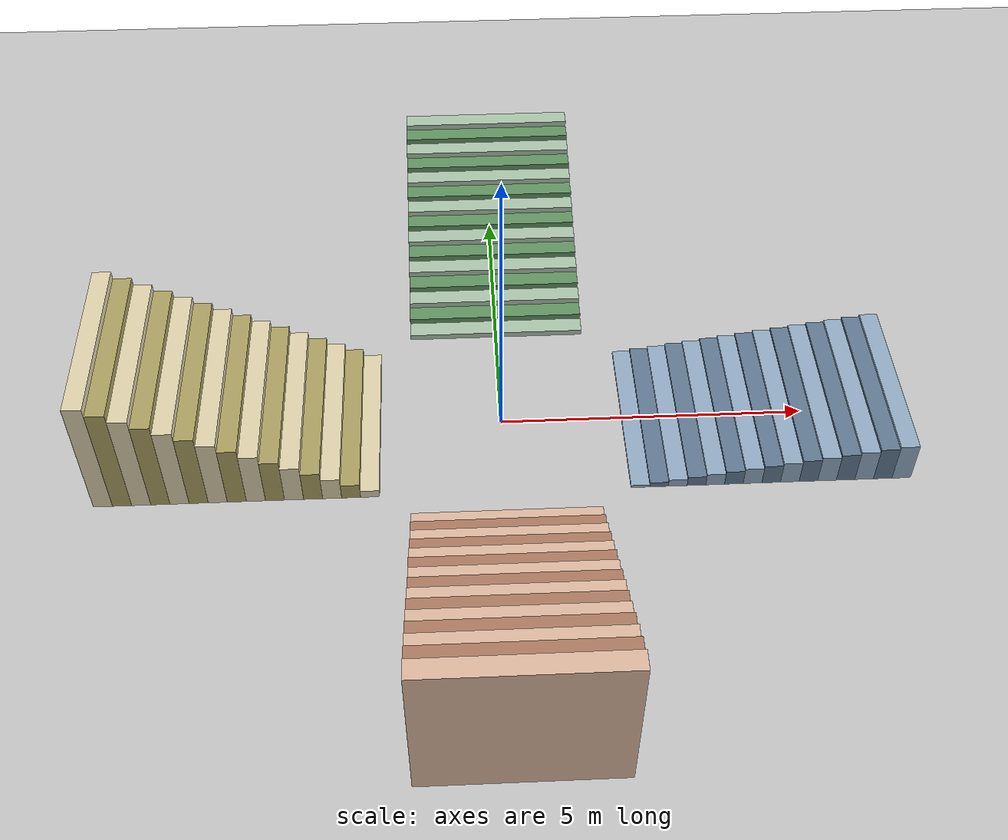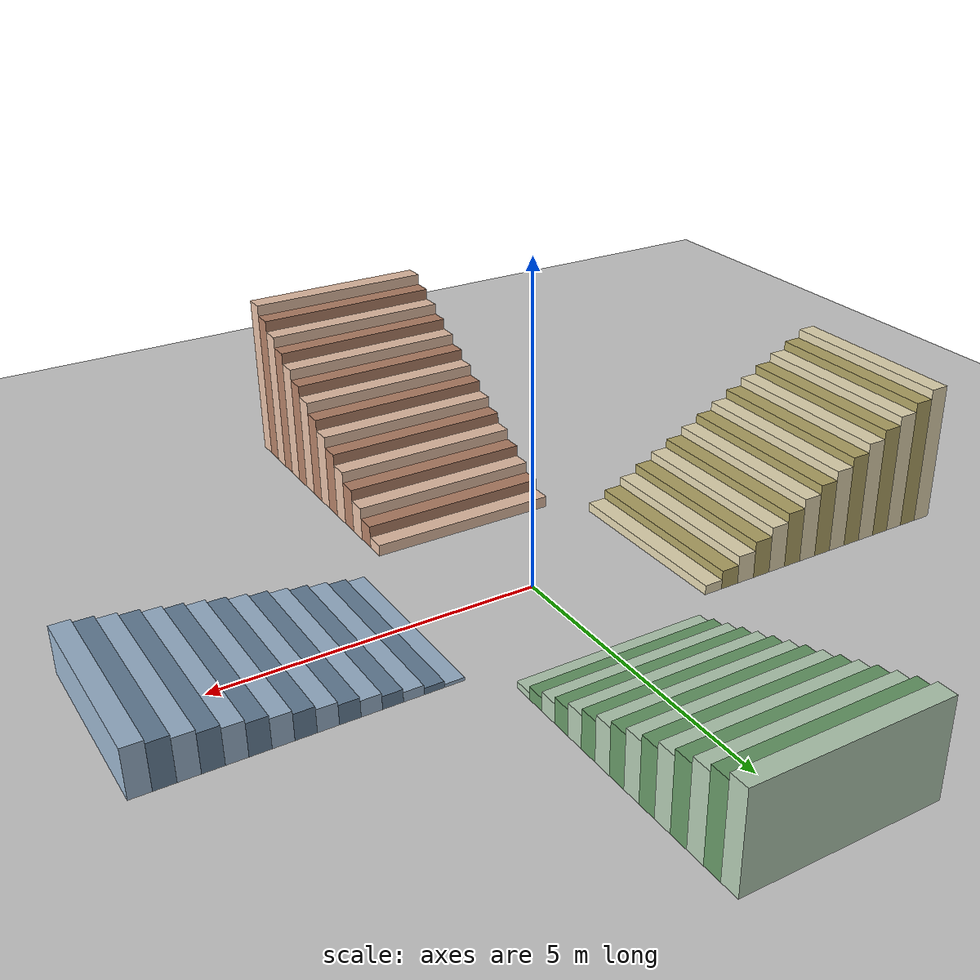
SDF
<?xml version="1.0" ?>
<sdf version="1.5">
  <world name="quadruped_stair_pro_v3_friction">

    <physics type="ode">
        <max_step_size>0.0005</max_step_size>
        <real_time_factor>1</real_time_factor>
        <real_time_update_rate>2000</real_time_update_rate>
        <gravity>0 0 -9.81</gravity>
        <ode>
            <solver>
                <type>quick</type>
                <iters>100</iters>
                <sor>1.0</sor>
            </solver>
            <constraints>
                <cfm>0.0</cfm>
                <erp>0.2</erp>
                <contact_max_correcting_vel>10.0</contact_max_correcting_vel>
                <contact_surface_layer>0.001</contact_surface_layer>
            </constraints>
        </ode>
    </physics>

    <include><uri>model://sun</uri></include>

    <model name="ground_plane_friction">
      <static>true</static>
      <link name="link">
        <collision name="collision">
          <geometry><plane><normal>0 0 1</normal><size>100 100</size></plane></geometry>
          <surface>
            <friction>
              <ode><mu>1.0</mu><mu2>1.0</mu2></ode>
            </friction>
          </surface>
        </collision>
        <visual name="visual">
          <geometry><plane><normal>0 0 1</normal><size>100 100</size></plane></geometry>
          <material><ambient>0.8 0.8 0.8 1</ambient><diffuse>0.8 0.8 0.8 1</diffuse></material>
        </visual>
      </link>
    </model>

    <model name="stair_challenge_env">
      <static>true</static>

      <link name="step_5cm_1"><pose>2.15 0 0.025 0 0 0</pose><visual name="v"><geometry><box><size>0.3 3.0 0.05</size></box></geometry><material><ambient>0.6 0.7 0.8 1</ambient><diffuse>0.6 0.7 0.8 1</diffuse></material></visual><collision name="c"><geometry><box><size>0.3 3.0 0.05</size></box></geometry><surface><friction><ode><mu>1.0</mu><mu2>1.0</mu2></ode></friction></surface></collision></link>
      <link name="step_5cm_2"><pose>2.45 0 0.050 0 0 0</pose><visual name="v"><geometry><box><size>0.3 3.0 0.10</size></box></geometry><material><ambient>0.4 0.5 0.6 1</ambient><diffuse>0.4 0.5 0.6 1</diffuse></material></visual><collision name="c"><geometry><box><size>0.3 3.0 0.10</size></box></geometry><surface><friction><ode><mu>1.0</mu><mu2>1.0</mu2></ode></friction></surface></collision></link>
      <link name="step_5cm_3"><pose>2.75 0 0.075 0 0 0</pose><visual name="v"><geometry><box><size>0.3 3.0 0.15</size></box></geometry><material><ambient>0.6 0.7 0.8 1</ambient><diffuse>0.6 0.7 0.8 1</diffuse></material></visual><collision name="c"><geometry><box><size>0.3 3.0 0.15</size></box></geometry><surface><friction><ode><mu>1.0</mu><mu2>1.0</mu2></ode></friction></surface></collision></link>
      <link name="step_5cm_4"><pose>3.05 0 0.100 0 0 0</pose><visual name="v"><geometry><box><size>0.3 3.0 0.20</size></box></geometry><material><ambient>0.4 0.5 0.6 1</ambient><diffuse>0.4 0.5 0.6 1</diffuse></material></visual><collision name="c"><geometry><box><size>0.3 3.0 0.20</size></box></geometry><surface><friction><ode><mu>1.0</mu><mu2>1.0</mu2></ode></friction></surface></collision></link>
      <link name="step_5cm_5"><pose>3.35 0 0.125 0 0 0</pose><visual name="v"><geometry><box><size>0.3 3.0 0.25</size></box></geometry><material><ambient>0.6 0.7 0.8 1</ambient><diffuse>0.6 0.7 0.8 1</diffuse></material></visual><collision name="c"><geometry><box><size>0.3 3.0 0.25</size></box></geometry><surface><friction><ode><mu>1.0</mu><mu2>1.0</mu2></ode></friction></surface></collision></link>
      <link name="step_5cm_6"><pose>3.65 0 0.150 0 0 0</pose><visual name="v"><geometry><box><size>0.3 3.0 0.30</size></box></geometry><material><ambient>0.4 0.5 0.6 1</ambient><diffuse>0.4 0.5 0.6 1</diffuse></material></visual><collision name="c"><geometry><box><size>0.3 3.0 0.30</size></box></geometry><surface><friction><ode><mu>1.0</mu><mu2>1.0</mu2></ode></friction></surface></collision></link>
      <link name="step_5cm_7"><pose>3.95 0 0.175 0 0 0</pose><visual name="v"><geometry><box><size>0.3 3.0 0.35</size></box></geometry><material><ambient>0.6 0.7 0.8 1</ambient><diffuse>0.6 0.7 0.8 1</diffuse></material></visual><collision name="c"><geometry><box><size>0.3 3.0 0.35</size></box></geometry><surface><friction><ode><mu>1.0</mu><mu2>1.0</mu2></ode></friction></surface></collision></link>
      <link name="step_5cm_8"><pose>4.25 0 0.200 0 0 0</pose><visual name="v"><geometry><box><size>0.3 3.0 0.40</size></box></geometry><material><ambient>0.4 0.5 0.6 1</ambient><diffuse>0.4 0.5 0.6 1</diffuse></material></visual><collision name="c"><geometry><box><size>0.3 3.0 0.40</size></box></geometry><surface><friction><ode><mu>1.0</mu><mu2>1.0</mu2></ode></friction></surface></collision></link>
      <link name="step_5cm_9"><pose>4.55 0 0.225 0 0 0</pose><visual name="v"><geometry><box><size>0.3 3.0 0.45</size></box></geometry><material><ambient>0.6 0.7 0.8 1</ambient><diffuse>0.6 0.7 0.8 1</diffuse></material></visual><collision name="c"><geometry><box><size>0.3 3.0 0.45</size></box></geometry><surface><friction><ode><mu>1.0</mu><mu2>1.0</mu2></ode></friction></surface></collision></link>
      <link name="step_5cm_10"><pose>4.85 0 0.250 0 0 0</pose><visual name="v"><geometry><box><size>0.3 3.0 0.50</size></box></geometry><material><ambient>0.4 0.5 0.6 1</ambient><diffuse>0.4 0.5 0.6 1</diffuse></material></visual><collision name="c"><geometry><box><size>0.3 3.0 0.50</size></box></geometry><surface><friction><ode><mu>1.0</mu><mu2>1.0</mu2></ode></friction></surface></collision></link>
      <link name="step_5cm_11"><pose>5.15 0 0.275 0 0 0</pose><visual name="v"><geometry><box><size>0.3 3.0 0.55</size></box></geometry><material><ambient>0.6 0.7 0.8 1</ambient><diffuse>0.6 0.7 0.8 1</diffuse></material></visual><collision name="c"><geometry><box><size>0.3 3.0 0.55</size></box></geometry><surface><friction><ode><mu>1.0</mu><mu2>1.0</mu2></ode></friction></surface></collision></link>
      <link name="step_5cm_12"><pose>5.45 0 0.300 0 0 0</pose><visual name="v"><geometry><box><size>0.3 3.0 0.60</size></box></geometry><material><ambient>0.4 0.5 0.6 1</ambient><diffuse>0.4 0.5 0.6 1</diffuse></material></visual><collision name="c"><geometry><box><size>0.3 3.0 0.60</size></box></geometry><surface><friction><ode><mu>1.0</mu><mu2>1.0</mu2></ode></friction></surface></collision></link>
      <link name="step_5cm_13"><pose>5.75 0 0.325 0 0 0</pose><visual name="v"><geometry><box><size>0.3 3.0 0.65</size></box></geometry><material><ambient>0.6 0.7 0.8 1</ambient><diffuse>0.6 0.7 0.8 1</diffuse></material></visual><collision name="c"><geometry><box><size>0.3 3.0 0.65</size></box></geometry><surface><friction><ode><mu>1.0</mu><mu2>1.0</mu2></ode></friction></surface></collision></link>
      <link name="step_5cm_14"><pose>6.05 0 0.350 0 0 0</pose><visual name="v"><geometry><box><size>0.3 3.0 0.70</size></box></geometry><material><ambient>0.4 0.5 0.6 1</ambient><diffuse>0.4 0.5 0.6 1</diffuse></material></visual><collision name="c"><geometry><box><size>0.3 3.0 0.70</size></box></geometry><surface><friction><ode><mu>1.0</mu><mu2>1.0</mu2></ode></friction></surface></collision></link>
      <link name="step_5cm_15"><pose>6.35 0 0.375 0 0 0</pose><visual name="v"><geometry><box><size>0.3 3.0 0.75</size></box></geometry><material><ambient>0.6 0.7 0.8 1</ambient><diffuse>0.6 0.7 0.8 1</diffuse></material></visual><collision name="c"><geometry><box><size>0.3 3.0 0.75</size></box></geometry><surface><friction><ode><mu>1.0</mu><mu2>1.0</mu2></ode></friction></surface></collision></link>

      <link name="step_10cm_1"><pose>0 2.15 0.05 0 0 0</pose><visual name="v"><geometry><box><size>3.0 0.3 0.10</size></box></geometry><material><ambient>0.7 0.8 0.7 1</ambient><diffuse>0.7 0.8 0.7 1</diffuse></material></visual><collision name="c"><geometry><box><size>3.0 0.3 0.10</size></box></geometry><surface><friction><ode><mu>1.0</mu><mu2>1.0</mu2></ode></friction></surface></collision></link>
      <link name="step_10cm_2"><pose>0 2.45 0.10 0 0 0</pose><visual name="v"><geometry><box><size>3.0 0.3 0.20</size></box></geometry><material><ambient>0.4 0.6 0.4 1</ambient><diffuse>0.4 0.6 0.4 1</diffuse></material></visual><collision name="c"><geometry><box><size>3.0 0.3 0.20</size></box></geometry><surface><friction><ode><mu>1.0</mu><mu2>1.0</mu2></ode></friction></surface></collision></link>
      <link name="step_10cm_3"><pose>0 2.75 0.15 0 0 0</pose><visual name="v"><geometry><box><size>3.0 0.3 0.30</size></box></geometry><material><ambient>0.7 0.8 0.7 1</ambient><diffuse>0.7 0.8 0.7 1</diffuse></material></visual><collision name="c"><geometry><box><size>3.0 0.3 0.30</size></box></geometry><surface><friction><ode><mu>1.0</mu><mu2>1.0</mu2></ode></friction></surface></collision></link>
      <link name="step_10cm_4"><pose>0 3.05 0.20 0 0 0</pose><visual name="v"><geometry><box><size>3.0 0.3 0.40</size></box></geometry><material><ambient>0.4 0.6 0.4 1</ambient><diffuse>0.4 0.6 0.4 1</diffuse></material></visual><collision name="c"><geometry><box><size>3.0 0.3 0.40</size></box></geometry><surface><friction><ode><mu>1.0</mu><mu2>1.0</mu2></ode></friction></surface></collision></link>
      <link name="step_10cm_5"><pose>0 3.35 0.25 0 0 0</pose><visual name="v"><geometry><box><size>3.0 0.3 0.50</size></box></geometry><material><ambient>0.7 0.8 0.7 1</ambient><diffuse>0.7 0.8 0.7 1</diffuse></material></visual><collision name="c"><geometry><box><size>3.0 0.3 0.50</size></box></geometry><surface><friction><ode><mu>1.0</mu><mu2>1.0</mu2></ode></friction></surface></collision></link>
      <link name="step_10cm_6"><pose>0 3.65 0.30 0 0 0</pose><visual name="v"><geometry><box><size>3.0 0.3 0.60</size></box></geometry><material><ambient>0.4 0.6 0.4 1</ambient><diffuse>0.4 0.6 0.4 1</diffuse></material></visual><collision name="c"><geometry><box><size>3.0 0.3 0.60</size></box></geometry><surface><friction><ode><mu>1.0</mu><mu2>1.0</mu2></ode></friction></surface></collision></link>
      <link name="step_10cm_7"><pose>0 3.95 0.35 0 0 0</pose><visual name="v"><geometry><box><size>3.0 0.3 0.70</size></box></geometry><material><ambient>0.7 0.8 0.7 1</ambient><diffuse>0.7 0.8 0.7 1</diffuse></material></visual><collision name="c"><geometry><box><size>3.0 0.3 0.70</size></box></geometry><surface><friction><ode><mu>1.0</mu><mu2>1.0</mu2></ode></friction></surface></collision></link>
      <link name="step_10cm_8"><pose>0 4.25 0.40 0 0 0</pose><visual name="v"><geometry><box><size>3.0 0.3 0.80</size></box></geometry><material><ambient>0.4 0.6 0.4 1</ambient><diffuse>0.4 0.6 0.4 1</diffuse></material></visual><collision name="c"><geometry><box><size>3.0 0.3 0.80</size></box></geometry><surface><friction><ode><mu>1.0</mu><mu2>1.0</mu2></ode></friction></surface></collision></link>
      <link name="step_10cm_9"><pose>0 4.55 0.45 0 0 0</pose><visual name="v"><geometry><box><size>3.0 0.3 0.90</size></box></geometry><material><ambient>0.7 0.8 0.7 1</ambient><diffuse>0.7 0.8 0.7 1</diffuse></material></visual><collision name="c"><geometry><box><size>3.0 0.3 0.90</size></box></geometry><surface><friction><ode><mu>1.0</mu><mu2>1.0</mu2></ode></friction></surface></collision></link>
      <link name="step_10cm_10"><pose>0 4.85 0.50 0 0 0</pose><visual name="v"><geometry><box><size>3.0 0.3 1.00</size></box></geometry><material><ambient>0.4 0.6 0.4 1</ambient><diffuse>0.4 0.6 0.4 1</diffuse></material></visual><collision name="c"><geometry><box><size>3.0 0.3 1.00</size></box></geometry><surface><friction><ode><mu>1.0</mu><mu2>1.0</mu2></ode></friction></surface></collision></link>
      <link name="step_10cm_11"><pose>0 5.15 0.55 0 0 0</pose><visual name="v"><geometry><box><size>3.0 0.3 1.10</size></box></geometry><material><ambient>0.7 0.8 0.7 1</ambient><diffuse>0.7 0.8 0.7 1</diffuse></material></visual><collision name="c"><geometry><box><size>3.0 0.3 1.10</size></box></geometry><surface><friction><ode><mu>1.0</mu><mu2>1.0</mu2></ode></friction></surface></collision></link>
      <link name="step_10cm_12"><pose>0 5.45 0.60 0 0 0</pose><visual name="v"><geometry><box><size>3.0 0.3 1.20</size></box></geometry><material><ambient>0.4 0.6 0.4 1</ambient><diffuse>0.4 0.6 0.4 1</diffuse></material></visual><collision name="c"><geometry><box><size>3.0 0.3 1.20</size></box></geometry><surface><friction><ode><mu>1.0</mu><mu2>1.0</mu2></ode></friction></surface></collision></link>
      <link name="step_10cm_13"><pose>0 5.75 0.65 0 0 0</pose><visual name="v"><geometry><box><size>3.0 0.3 1.30</size></box></geometry><material><ambient>0.7 0.8 0.7 1</ambient><diffuse>0.7 0.8 0.7 1</diffuse></material></visual><collision name="c"><geometry><box><size>3.0 0.3 1.30</size></box></geometry><surface><friction><ode><mu>1.0</mu><mu2>1.0</mu2></ode></friction></surface></collision></link>
      <link name="step_10cm_14"><pose>0 6.05 0.70 0 0 0</pose><visual name="v"><geometry><box><size>3.0 0.3 1.40</size></box></geometry><material><ambient>0.4 0.6 0.4 1</ambient><diffuse>0.4 0.6 0.4 1</diffuse></material></visual><collision name="c"><geometry><box><size>3.0 0.3 1.40</size></box></geometry><surface><friction><ode><mu>1.0</mu><mu2>1.0</mu2></ode></friction></surface></collision></link>
      <link name="step_10cm_15"><pose>0 6.35 0.75 0 0 0</pose><visual name="v"><geometry><box><size>3.0 0.3 1.50</size></box></geometry><material><ambient>0.7 0.8 0.7 1</ambient><diffuse>0.7 0.8 0.7 1</diffuse></material></visual><collision name="c"><geometry><box><size>3.0 0.3 1.50</size></box></geometry><surface><friction><ode><mu>1.0</mu><mu2>1.0</mu2></ode></friction></surface></collision></link>

      <link name="step_15cm_1"><pose>-2.15 0 0.075 0 0 0</pose><visual name="v"><geometry><box><size>0.3 3.0 0.15</size></box></geometry><material><ambient>0.9 0.85 0.7 1</ambient><diffuse>0.9 0.85 0.7 1</diffuse></material></visual><collision name="c"><geometry><box><size>0.3 3.0 0.15</size></box></geometry><surface><friction><ode><mu>1.0</mu><mu2>1.0</mu2></ode></friction></surface></collision></link>
      <link name="step_15cm_2"><pose>-2.45 0 0.150 0 0 0</pose><visual name="v"><geometry><box><size>0.3 3.0 0.30</size></box></geometry><material><ambient>0.7 0.65 0.4 1</ambient><diffuse>0.7 0.65 0.4 1</diffuse></material></visual><collision name="c"><geometry><box><size>0.3 3.0 0.30</size></box></geometry><surface><friction><ode><mu>1.0</mu><mu2>1.0</mu2></ode></friction></surface></collision></link>
      <link name="step_15cm_3"><pose>-2.75 0 0.225 0 0 0</pose><visual name="v"><geometry><box><size>0.3 3.0 0.45</size></box></geometry><material><ambient>0.9 0.85 0.7 1</ambient><diffuse>0.9 0.85 0.7 1</diffuse></material></visual><collision name="c"><geometry><box><size>0.3 3.0 0.45</size></box></geometry><surface><friction><ode><mu>1.0</mu><mu2>1.0</mu2></ode></friction></surface></collision></link>
      <link name="step_15cm_4"><pose>-3.05 0 0.300 0 0 0</pose><visual name="v"><geometry><box><size>0.3 3.0 0.60</size></box></geometry><material><ambient>0.7 0.65 0.4 1</ambient><diffuse>0.7 0.65 0.4 1</diffuse></material></visual><collision name="c"><geometry><box><size>0.3 3.0 0.60</size></box></geometry><surface><friction><ode><mu>1.0</mu><mu2>1.0</mu2></ode></friction></surface></collision></link>
      <link name="step_15cm_5"><pose>-3.35 0 0.375 0 0 0</pose><visual name="v"><geometry><box><size>0.3 3.0 0.75</size></box></geometry><material><ambient>0.9 0.85 0.7 1</ambient><diffuse>0.9 0.85 0.7 1</diffuse></material></visual><collision name="c"><geometry><box><size>0.3 3.0 0.75</size></box></geometry><surface><friction><ode><mu>1.0</mu><mu2>1.0</mu2></ode></friction></surface></collision></link>
      <link name="step_15cm_6"><pose>-3.65 0 0.450 0 0 0</pose><visual name="v"><geometry><box><size>0.3 3.0 0.90</size></box></geometry><material><ambient>0.7 0.65 0.4 1</ambient><diffuse>0.7 0.65 0.4 1</diffuse></material></visual><collision name="c"><geometry><box><size>0.3 3.0 0.90</size></box></geometry><surface><friction><ode><mu>1.0</mu><mu2>1.0</mu2></ode></friction></surface></collision></link>
      <link name="step_15cm_7"><pose>-3.95 0 0.525 0 0 0</pose><visual name="v"><geometry><box><size>0.3 3.0 1.05</size></box></geometry><material><ambient>0.9 0.85 0.7 1</ambient><diffuse>0.9 0.85 0.7 1</diffuse></material></visual><collision name="c"><geometry><box><size>0.3 3.0 1.05</size></box></geometry><surface><friction><ode><mu>1.0</mu><mu2>1.0</mu2></ode></friction></surface></collision></link>
      <link name="step_15cm_8"><pose>-4.25 0 0.600 0 0 0</pose><visual name="v"><geometry><box><size>0.3 3.0 1.20</size></box></geometry><material><ambient>0.7 0.65 0.4 1</ambient><diffuse>0.7 0.65 0.4 1</diffuse></material></visual><collision name="c"><geometry><box><size>0.3 3.0 1.20</size></box></geometry><surface><friction><ode><mu>1.0</mu><mu2>1.0</mu2></ode></friction></surface></collision></link>
      <link name="step_15cm_9"><pose>-4.55 0 0.675 0 0 0</pose><visual name="v"><geometry><box><size>0.3 3.0 1.35</size></box></geometry><material><ambient>0.9 0.85 0.7 1</ambient><diffuse>0.9 0.85 0.7 1</diffuse></material></visual><collision name="c"><geometry><box><size>0.3 3.0 1.35</size></box></geometry><surface><friction><ode><mu>1.0</mu><mu2>1.0</mu2></ode></friction></surface></collision></link>
      <link name="step_15cm_10"><pose>-4.85 0 0.750 0 0 0</pose><visual name="v"><geometry><box><size>0.3 3.0 1.50</size></box></geometry><material><ambient>0.7 0.65 0.4 1</ambient><diffuse>0.7 0.65 0.4 1</diffuse></material></visual><collision name="c"><geometry><box><size>0.3 3.0 1.50</size></box></geometry><surface><friction><ode><mu>1.0</mu><mu2>1.0</mu2></ode></friction></surface></collision></link>
      <link name="step_15cm_11"><pose>-5.15 0 0.825 0 0 0</pose><visual name="v"><geometry><box><size>0.3 3.0 1.65</size></box></geometry><material><ambient>0.9 0.85 0.7 1</ambient><diffuse>0.9 0.85 0.7 1</diffuse></material></visual><collision name="c"><geometry><box><size>0.3 3.0 1.65</size></box></geometry><surface><friction><ode><mu>1.0</mu><mu2>1.0</mu2></ode></friction></surface></collision></link>
      <link name="step_15cm_12"><pose>-5.45 0 0.900 0 0 0</pose><visual name="v"><geometry><box><size>0.3 3.0 1.80</size></box></geometry><material><ambient>0.7 0.65 0.4 1</ambient><diffuse>0.7 0.65 0.4 1</diffuse></material></visual><collision name="c"><geometry><box><size>0.3 3.0 1.80</size></box></geometry><surface><friction><ode><mu>1.0</mu><mu2>1.0</mu2></ode></friction></surface></collision></link>
      <link name="step_15cm_13"><pose>-5.75 0 0.975 0 0 0</pose><visual name="v"><geometry><box><size>0.3 3.0 1.95</size></box></geometry><material><ambient>0.9 0.85 0.7 1</ambient><diffuse>0.9 0.85 0.7 1</diffuse></material></visual><collision name="c"><geometry><box><size>0.3 3.0 1.95</size></box></geometry><surface><friction><ode><mu>1.0</mu><mu2>1.0</mu2></ode></friction></surface></collision></link>
      <link name="step_15cm_14"><pose>-6.05 0 1.050 0 0 0</pose><visual name="v"><geometry><box><size>0.3 3.0 2.10</size></box></geometry><material><ambient>0.7 0.65 0.4 1</ambient><diffuse>0.7 0.65 0.4 1</diffuse></material></visual><collision name="c"><geometry><box><size>0.3 3.0 2.10</size></box></geometry><surface><friction><ode><mu>1.0</mu><mu2>1.0</mu2></ode></friction></surface></collision></link>
      <link name="step_15cm_15"><pose>-6.35 0 1.125 0 0 0</pose><visual name="v"><geometry><box><size>0.3 3.0 2.25</size></box></geometry><material><ambient>0.9 0.85 0.7 1</ambient><diffuse>0.9 0.85 0.7 1</diffuse></material></visual><collision name="c"><geometry><box><size>0.3 3.0 2.25</size></box></geometry><surface><friction><ode><mu>1.0</mu><mu2>1.0</mu2></ode></friction></surface></collision></link>

      <link name="step_18cm_1"><pose>0 -2.15 0.090 0 0 0</pose><visual name="v"><geometry><box><size>3.0 0.3 0.18</size></box></geometry><material><ambient>0.9 0.75 0.65 1</ambient><diffuse>0.9 0.75 0.65 1</diffuse></material></visual><collision name="c"><geometry><box><size>3.0 0.3 0.18</size></box></geometry><surface><friction><ode><mu>1.0</mu><mu2>1.0</mu2></ode></friction></surface></collision></link>
      <link name="step_18cm_2"><pose>0 -2.45 0.180 0 0 0</pose><visual name="v"><geometry><box><size>3.0 0.3 0.36</size></box></geometry><material><ambient>0.7 0.5 0.4 1</ambient><diffuse>0.7 0.5 0.4 1</diffuse></material></visual><collision name="c"><geometry><box><size>3.0 0.3 0.36</size></box></geometry><surface><friction><ode><mu>1.0</mu><mu2>1.0</mu2></ode></friction></surface></collision></link>
      <link name="step_18cm_3"><pose>0 -2.75 0.270 0 0 0</pose><visual name="v"><geometry><box><size>3.0 0.3 0.54</size></box></geometry><material><ambient>0.9 0.75 0.65 1</ambient><diffuse>0.9 0.75 0.65 1</diffuse></material></visual><collision name="c"><geometry><box><size>3.0 0.3 0.54</size></box></geometry><surface><friction><ode><mu>1.0</mu><mu2>1.0</mu2></ode></friction></surface></collision></link>
      <link name="step_18cm_4"><pose>0 -3.05 0.360 0 0 0</pose><visual name="v"><geometry><box><size>3.0 0.3 0.72</size></box></geometry><material><ambient>0.7 0.5 0.4 1</ambient><diffuse>0.7 0.5 0.4 1</diffuse></material></visual><collision name="c"><geometry><box><size>3.0 0.3 0.72</size></box></geometry><surface><friction><ode><mu>1.0</mu><mu2>1.0</mu2></ode></friction></surface></collision></link>
      <link name="step_18cm_5"><pose>0 -3.35 0.450 0 0 0</pose><visual name="v"><geometry><box><size>3.0 0.3 0.90</size></box></geometry><material><ambient>0.9 0.75 0.65 1</ambient><diffuse>0.9 0.75 0.65 1</diffuse></material></visual><collision name="c"><geometry><box><size>3.0 0.3 0.90</size></box></geometry><surface><friction><ode><mu>1.0</mu><mu2>1.0</mu2></ode></friction></surface></collision></link>
      <link name="step_18cm_6"><pose>0 -3.65 0.540 0 0 0</pose><visual name="v"><geometry><box><size>3.0 0.3 1.08</size></box></geometry><material><ambient>0.7 0.5 0.4 1</ambient><diffuse>0.7 0.5 0.4 1</diffuse></material></visual><collision name="c"><geometry><box><size>3.0 0.3 1.08</size></box></geometry><surface><friction><ode><mu>1.0</mu><mu2>1.0</mu2></ode></friction></surface></collision></link>
      <link name="step_18cm_7"><pose>0 -3.95 0.630 0 0 0</pose><visual name="v"><geometry><box><size>3.0 0.3 1.26</size></box></geometry><material><ambient>0.9 0.75 0.65 1</ambient><diffuse>0.9 0.75 0.65 1</diffuse></material></visual><collision name="c"><geometry><box><size>3.0 0.3 1.26</size></box></geometry><surface><friction><ode><mu>1.0</mu><mu2>1.0</mu2></ode></friction></surface></collision></link>
      <link name="step_18cm_8"><pose>0 -4.25 0.720 0 0 0</pose><visual name="v"><geometry><box><size>3.0 0.3 1.44</size></box></geometry><material><ambient>0.7 0.5 0.4 1</ambient><diffuse>0.7 0.5 0.4 1</diffuse></material></visual><collision name="c"><geometry><box><size>3.0 0.3 1.44</size></box></geometry><surface><friction><ode><mu>1.0</mu><mu2>1.0</mu2></ode></friction></surface></collision></link>
      <link name="step_18cm_9"><pose>0 -4.55 0.810 0 0 0</pose><visual name="v"><geometry><box><size>3.0 0.3 1.62</size></box></geometry><material><ambient>0.9 0.75 0.65 1</ambient><diffuse>0.9 0.75 0.65 1</diffuse></material></visual><collision name="c"><geometry><box><size>3.0 0.3 1.62</size></box></geometry><surface><friction><ode><mu>1.0</mu><mu2>1.0</mu2></ode></friction></surface></collision></link>
      <link name="step_18cm_10"><pose>0 -4.85 0.900 0 0 0</pose><visual name="v"><geometry><box><size>3.0 0.3 1.80</size></box></geometry><material><ambient>0.7 0.5 0.4 1</ambient><diffuse>0.7 0.5 0.4 1</diffuse></material></visual><collision name="c"><geometry><box><size>3.0 0.3 1.80</size></box></geometry><surface><friction><ode><mu>1.0</mu><mu2>1.0</mu2></ode></friction></surface></collision></link>
      <link name="step_18cm_11"><pose>0 -5.15 0.990 0 0 0</pose><visual name="v"><geometry><box><size>3.0 0.3 1.98</size></box></geometry><material><ambient>0.9 0.75 0.65 1</ambient><diffuse>0.9 0.75 0.65 1</diffuse></material></visual><collision name="c"><geometry><box><size>3.0 0.3 1.98</size></box></geometry><surface><friction><ode><mu>1.0</mu><mu2>1.0</mu2></ode></friction></surface></collision></link>
      <link name="step_18cm_12"><pose>0 -5.45 1.080 0 0 0</pose><visual name="v"><geometry><box><size>3.0 0.3 2.16</size></box></geometry><material><ambient>0.7 0.5 0.4 1</ambient><diffuse>0.7 0.5 0.4 1</diffuse></material></visual><collision name="c"><geometry><box><size>3.0 0.3 2.16</size></box></geometry><surface><friction><ode><mu>1.0</mu><mu2>1.0</mu2></ode></friction></surface></collision></link>
      <link name="step_18cm_13"><pose>0 -5.75 1.170 0 0 0</pose><visual name="v"><geometry><box><size>3.0 0.3 2.34</size></box></geometry><material><ambient>0.9 0.75 0.65 1</ambient><diffuse>0.9 0.75 0.65 1</diffuse></material></visual><collision name="c"><geometry><box><size>3.0 0.3 2.34</size></box></geometry><surface><friction><ode><mu>1.0</mu><mu2>1.0</mu2></ode></friction></surface></collision></link>
      <link name="step_18cm_14"><pose>0 -6.05 1.260 0 0 0</pose><visual name="v"><geometry><box><size>3.0 0.3 2.52</size></box></geometry><material><ambient>0.7 0.5 0.4 1</ambient><diffuse>0.7 0.5 0.4 1</diffuse></material></visual><collision name="c"><geometry><box><size>3.0 0.3 2.52</size></box></geometry><surface><friction><ode><mu>1.0</mu><mu2>1.0</mu2></ode></friction></surface></collision></link>
      <link name="step_18cm_15"><pose>0 -6.35 1.350 0 0 0</pose><visual name="v"><geometry><box><size>3.0 0.3 2.70</size></box></geometry><material><ambient>0.9 0.75 0.65 1</ambient><diffuse>0.9 0.75 0.65 1</diffuse></material></visual><collision name="c"><geometry><box><size>3.0 0.3 2.70</size></box></geometry><surface><friction><ode><mu>1.0</mu><mu2>1.0</mu2></ode></friction></surface></collision></link>

    </model>
  </world>
</sdf>
